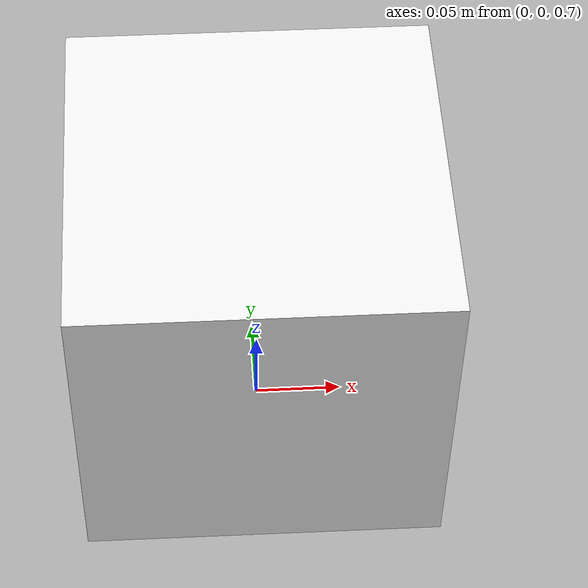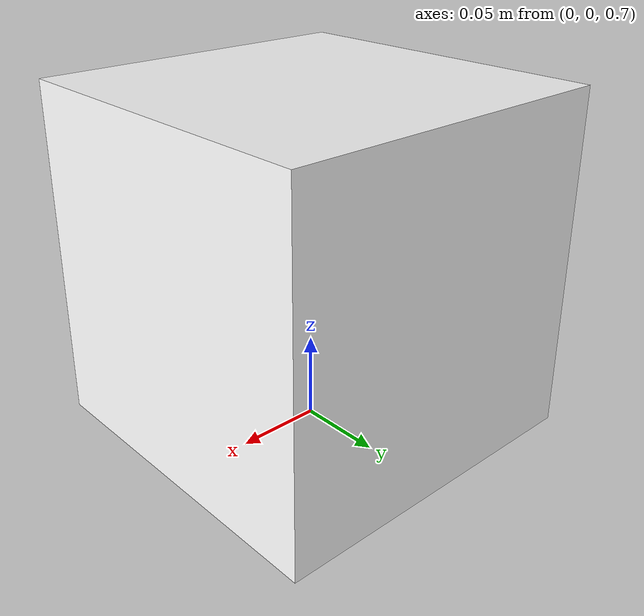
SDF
<?xml version='1.0'?>
<sdf version='1.5'>
  <model name='quantum_robotics_aruco'>

    <link name='marker'>
      <pose frame=''>0 0 0.8 0 0 0</pose>
      <visual name='visual'>
        <geometry>
          <box>
            <size>0.20 0.20 0.20</size>
          </box>
        </geometry>
        <material>
          <script>
            <uri>model://quantum_robotics_aruco/materials/scripts</uri>
            <uri>model://quantum_robotics_aruco/materials/textures</uri>
            <name>QuantumRoboticsAruco/Marker</name>
          </script>
          <ambient>1 1 1 1</ambient>
          <diffuse>1 1 1 1</diffuse>
          <specular>0 0 0 1</specular>
          <emissive>1 1 1 0</emissive>
          <shader type='vertex'>
            <normal_map>__default__</normal_map>
          </shader>
        </material>
        <cast_shadows>1</cast_shadows>
        <transparency>0</transparency>
      </visual>
      <collision name='collision'>
        <laser_retro>0</laser_retro>
        <max_contacts>10</max_contacts>
        <pose frame=''>0 0 0 0 0 0</pose>
        <geometry>
          <box>
            <size>0.20 0.20 0.20</size>
          </box>
        </geometry>
      </collision>
    </link>

    <static>1</static>
    <allow_auto_disable>1</allow_auto_disable>

  </model>
</sdf>
